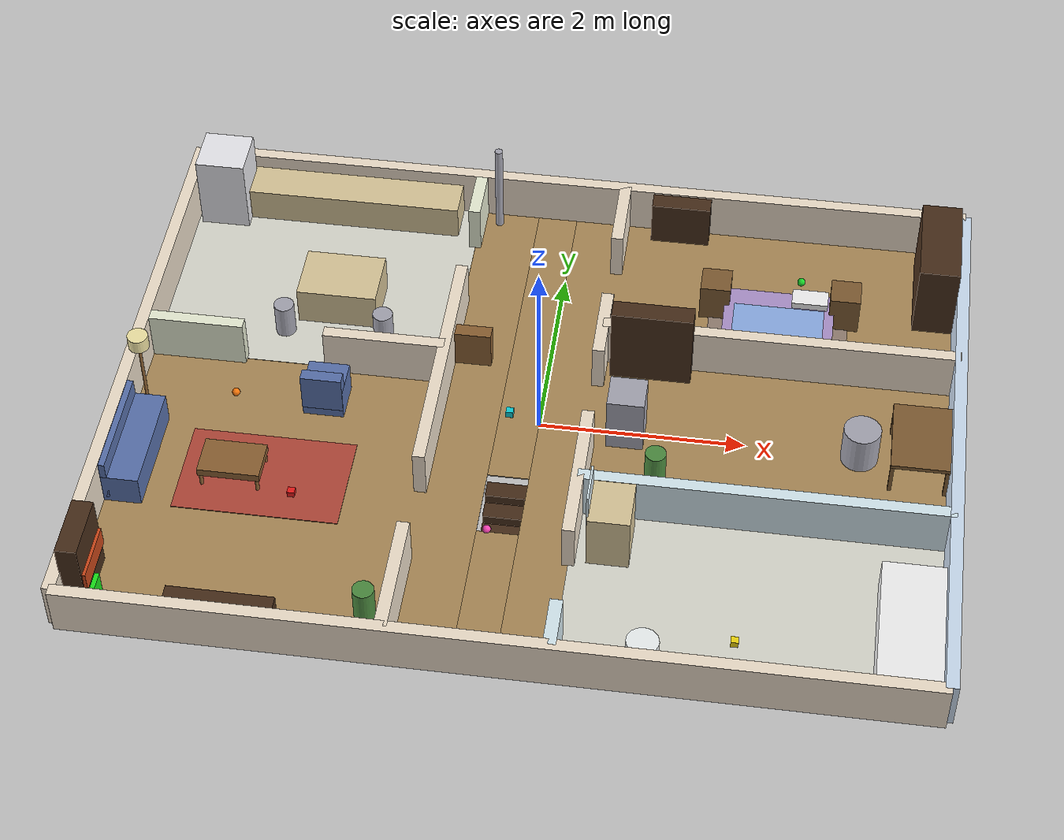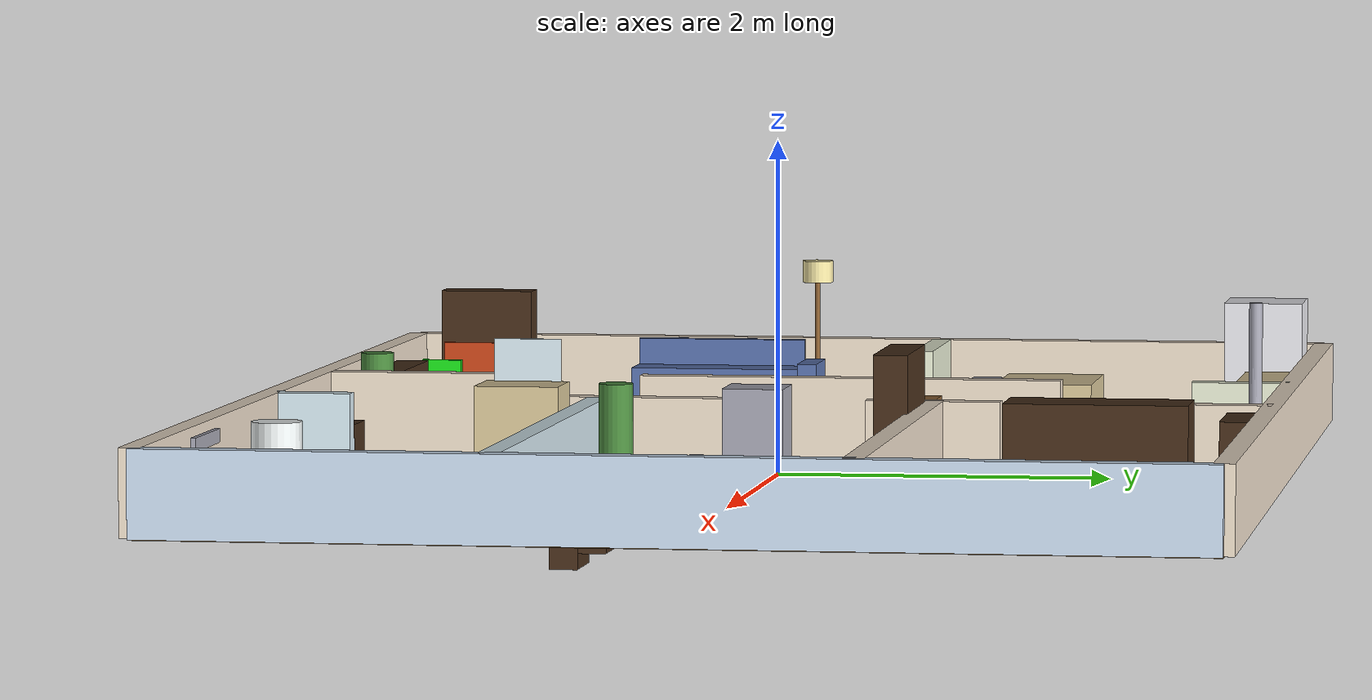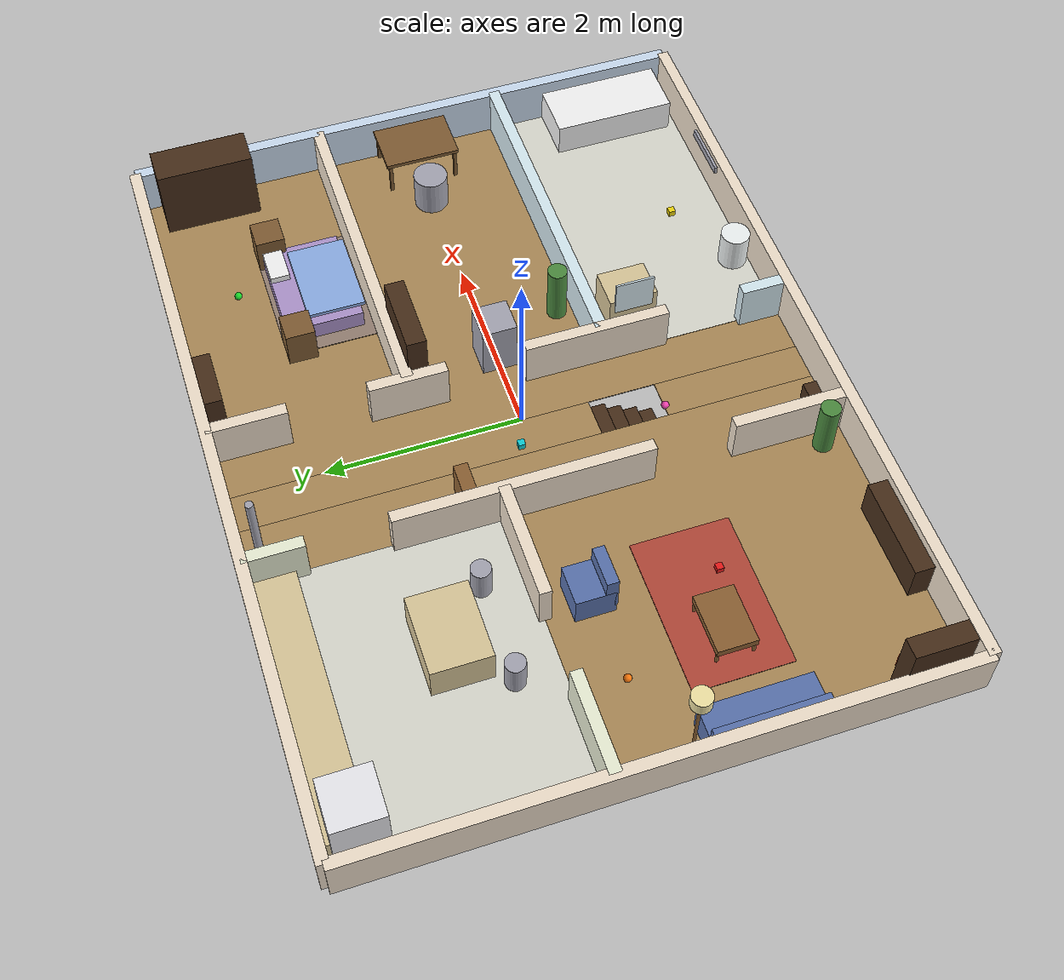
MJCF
<?xml version="1.0" encoding="utf-8"?>
<mujoco model="map_apartment">
  <visual>
    <headlight diffuse="0.6 0.6 0.6" ambient="0.3 0.3 0.3" specular="0 0 0" />
    <rgba haze="0.15 0.25 0.35 1" />
    <global azimuth="135" elevation="-25" />
    <quality shadowsize="4096" />
  </visual>

  <asset>
    <texture type="skybox" builtin="gradient" rgb1="0.3 0.5 0.7" rgb2="0 0 0" width="512" height="3072" />
    <texture type="2d" name="floor_wood" builtin="checker" rgb1="0.72 0.58 0.38" rgb2="0.62 0.50 0.30" width="256" height="256" />
    <texture type="2d" name="floor_tile" builtin="checker" rgb1="0.92 0.92 0.88" rgb2="0.78 0.78 0.74" width="256" height="256" />
    <material name="floor_main" texture="floor_wood" texrepeat="14 14" reflectance="0.04" />
    <material name="floor_kitchen" texture="floor_tile" texrepeat="20 20" reflectance="0.05" />
    <material name="floor_bath" texture="floor_tile" texrepeat="20 20" reflectance="0.10" />
    <material name="floor_carpet" rgba="0.58 0.50 0.45 1" reflectance="0.01" />

    <material name="wall_warm" rgba="0.94 0.88 0.80 1" reflectance="0.02" />
    <material name="wall_cool" rgba="0.80 0.87 0.95 1" reflectance="0.02" />
    <material name="wall_kitchen" rgba="0.92 0.94 0.84 1" reflectance="0.02" />
    <material name="wall_bath" rgba="0.84 0.92 0.95 1" reflectance="0.05" />

    <material name="sofa" rgba="0.35 0.45 0.68 1" />
    <material name="table_wood" rgba="0.55 0.38 0.20 1" />
    <material name="bed_mat" rgba="0.68 0.58 0.80 1" />
    <material name="bookshelf_mat" rgba="0.28 0.18 0.10 1" />
    <material name="desk_mat" rgba="0.50 0.36 0.20 1" />
    <material name="rug_mat" rgba="0.70 0.28 0.22 1" />
    <material name="lamp_mat" rgba="0.95 0.90 0.65 1" />
    <material name="dock_mat" rgba="0.10 0.90 0.10 1" />

    <material name="counter_mat" rgba="0.85 0.78 0.60 1" />
    <material name="fridge_mat" rgba="0.92 0.92 0.94 1" />
    <material name="tub_mat" rgba="0.96 0.96 0.96 1" />
    <material name="toilet_mat" rgba="0.94 0.96 0.96 1" />
    <material name="metal_mat" rgba="0.65 0.65 0.70 1" />

    <material name="obj_red" rgba="0.92 0.10 0.10 1" />
    <material name="obj_blue" rgba="0.10 0.20 0.95 1" />
    <material name="obj_yellow" rgba="0.95 0.85 0.05 1" />
    <material name="obj_cyan" rgba="0.05 0.82 0.85 1" />
    <material name="ball_orange" rgba="0.96 0.46 0.04 1" />
    <material name="ball_green" rgba="0.10 0.84 0.16 1" />
    <material name="ball_pink" rgba="0.96 0.26 0.70 1" />
  </asset>

  <worldbody>

    <light pos="0 0 3" dir="0 0 -1" directional="true" castshadow="true" />
    <geom name="floor_w" type="box" size="1.80 3.00 0.005" pos="-2.20 0.00 -0.005" material="floor_main" contype="1" conaffinity="1" />
    <geom name="floor_e" type="box" size="2.00 3.00 0.005" pos=" 2.00 0.00 -0.005" material="floor_main" contype="1" conaffinity="1" />
    <geom name="floor_corridor_s" type="box" size="0.20 0.80 0.005" pos="-0.20 -2.20 -0.005" material="floor_main" contype="1" conaffinity="1" />
    <geom name="floor_corridor_n" type="box" size="0.20 1.85 0.005" pos="-0.20  1.15 -0.005" material="floor_main" contype="1" conaffinity="1" />

    <geom name="stair_1" type="box" size="0.20 0.0875 0.10" pos="-0.20 -0.7875 -0.20" material="bookshelf_mat" contype="1" conaffinity="1" />
    <geom name="stair_2" type="box" size="0.20 0.0875 0.10" pos="-0.20 -0.9625 -0.30" material="bookshelf_mat" contype="1" conaffinity="1" />
    <geom name="stair_3" type="box" size="0.20 0.0875 0.10" pos="-0.20 -1.1375 -0.40" material="bookshelf_mat" contype="1" conaffinity="1" />
    <geom name="stair_4" type="box" size="0.20 0.0875 0.10" pos="-0.20 -1.3125 -0.50" material="bookshelf_mat" contype="1" conaffinity="1" />

    <geom name="floor_kitchen" type="box" size="1.50 1.25 0.002" pos="-2.50 1.75 0.002" material="floor_kitchen" contype="0" conaffinity="0" />
    <geom name="floor_bath" type="box" size="1.75 1.00 0.002" pos="2.25 -2.00 0.002" material="floor_bath" contype="0" conaffinity="0" />
    <geom name="rug_living" type="box" size="0.80 0.50 0.004" pos="-2.50 -1.00 0.004" material="rug_mat" contype="0" conaffinity="0" />
    <geom name="rug_bedroom" type="box" size="0.70 0.50 0.004" pos="2.20 1.50 0.004" material="floor_carpet" contype="0" conaffinity="0" />

    <geom name="wall_south" type="box" size="4.00 0.06 0.25" pos="0 -3.00 0.25" material="wall_warm" contype="1" conaffinity="1" />
    <geom name="wall_north" type="box" size="4.00 0.06 0.25" pos="0  3.00 0.25" material="wall_warm" contype="1" conaffinity="1" />
    <geom name="wall_west" type="box" size="0.06 3.00 0.25" pos="-4.00 0 0.25" material="wall_warm" contype="1" conaffinity="1" />
    <geom name="wall_east" type="box" size="0.06 3.00 0.25" pos=" 4.00 0 0.25" material="wall_cool" contype="1" conaffinity="1" />

    <geom name="wA_w" type="box" size="0.50 0.06 0.25" pos="-3.50  0.50 0.25" material="wall_kitchen" contype="1" conaffinity="1" />
    <geom name="wA_e" type="box" size="0.60 0.06 0.25" pos="-1.60  0.50 0.25" material="wall_warm" contype="1" conaffinity="1" />

    <geom name="wB_s" type="box" size="0.06 0.60 0.25" pos="-1.00 -2.40 0.25" material="wall_warm" contype="1" conaffinity="1" />
    <geom name="wB_m" type="box" size="0.06 1.30 0.25" pos="-1.00  0.30 0.25" material="wall_warm" contype="1" conaffinity="1" />
    <geom name="wB_n" type="box" size="0.06 0.30 0.25" pos="-1.00  2.70 0.25" material="wall_kitchen" contype="1" conaffinity="1" />

    <geom name="wC_s" type="box" size="0.06 0.25 0.25" pos="0.50 -2.75 0.25" material="wall_bath" contype="1" conaffinity="1" />
    <geom name="wC_m1" type="box" size="0.06 0.75 0.25" pos="0.50 -0.95 0.25" material="wall_warm" contype="1" conaffinity="1" />
    <geom name="wC_m2" type="box" size="0.06 0.40 0.25" pos="0.50  1.00 0.25" material="wall_warm" contype="1" conaffinity="1" />
    <geom name="wC_n" type="box" size="0.06 0.40 0.25" pos="0.50  2.60 0.25" material="wall_warm" contype="1" conaffinity="1" />

    <geom name="wF" type="box" size="1.75 0.06 0.25" pos="2.25 1.00 0.25" material="wall_warm" contype="1" conaffinity="1" />

    <geom name="wG" type="box" size="1.75 0.06 0.25" pos="2.25 -1.00 0.25" material="wall_bath" contype="1" conaffinity="1" />

    <geom name="kit_counter" type="box" size="1.30 0.20 0.18" pos="-2.50 2.74 0.18" material="counter_mat" contype="1" conaffinity="1" />

    <geom name="kit_fridge" type="box" size="0.25 0.25 0.40" pos="-3.65 2.65 0.40" material="fridge_mat" contype="1" conaffinity="1" />

    <geom name="kit_island" type="box" size="0.40 0.30 0.20" pos="-2.20 1.40 0.20" material="counter_mat" contype="1" conaffinity="1" />

    <geom name="kit_stool1" type="cylinder" size="0.10 0.18" pos="-2.70 0.95 0.18" material="metal_mat" contype="1" conaffinity="1" />
    <geom name="kit_stool2" type="cylinder" size="0.10 0.18" pos="-1.70 0.95 0.18" material="metal_mat" contype="1" conaffinity="1" />

    <geom name="liv_sofa_seat" type="box" size="0.20 0.55 0.16" pos="-3.78 -0.95 0.16" material="sofa" contype="1" conaffinity="1" />
    <geom name="liv_sofa_back" type="box" size="0.06 0.55 0.22" pos="-3.94 -0.95 0.27" material="sofa" contype="1" conaffinity="1" />

    <geom name="liv_table" type="box" size="0.30 0.20 0.04" pos="-2.80 -1.00 0.18" material="table_wood" contype="1" conaffinity="1" />
    <geom name="liv_table_l1" type="cylinder" size="0.018 0.08" pos="-3.07 -1.18 0.08" material="table_wood" contype="1" conaffinity="1" />
    <geom name="liv_table_l2" type="cylinder" size="0.018 0.08" pos="-2.53 -1.18 0.08" material="table_wood" contype="1" conaffinity="1" />
    <geom name="liv_table_l3" type="cylinder" size="0.018 0.08" pos="-3.07 -0.82 0.08" material="table_wood" contype="1" conaffinity="1" />
    <geom name="liv_table_l4" type="cylinder" size="0.018 0.08" pos="-2.53 -0.82 0.08" material="table_wood" contype="1" conaffinity="1" />

    <geom name="liv_tv_stand" type="box" size="0.50 0.10 0.20" pos="-2.50 -2.84 0.20" material="bookshelf_mat" contype="1" conaffinity="1" />

    <geom name="liv_shelf" type="box" size="0.10 0.30 0.40" pos="-3.85 -2.50 0.40" material="bookshelf_mat" contype="1" conaffinity="1" />
    <geom name="liv_books" type="box" size="0.06 0.28 0.10" pos="-3.78 -2.50 0.36" rgba="0.80 0.28 0.10 1" contype="0" conaffinity="0" />

    <geom name="liv_lamp_pole" type="cylinder" size="0.015 0.45" pos="-3.80 -0.30 0.45" material="table_wood" contype="1" conaffinity="1" />
    <geom name="liv_lamp_shade" type="cylinder" size="0.10 0.07" pos="-3.80 -0.30 0.95" material="lamp_mat" contype="0" conaffinity="0" />

    <geom name="liv_chair_seat" type="box" size="0.20 0.20 0.16" pos="-2.10 0.05 0.16" material="sofa" contype="1" conaffinity="1" />
    <geom name="liv_chair_back" type="box" size="0.20 0.06 0.20" pos="-2.10 -0.10 0.30" material="sofa" contype="1" conaffinity="1" />

    <geom name="liv_plant" type="cylinder" size="0.10 0.30" pos="-1.20 -2.70 0.30" rgba="0.30 0.55 0.25 1" contype="1" conaffinity="1" />

    <geom name="cor_console" type="box" size="0.20 0.07 0.20" pos="-0.78 0.80 0.20" material="table_wood" contype="1" conaffinity="1" />

    <geom name="cor_coat_rack" type="cylinder" size="0.04 0.50" pos="-0.80 2.80 0.50" material="metal_mat" contype="1" conaffinity="1" />

    <geom name="cor_shoes" type="box" size="0.20 0.07 0.10" pos="-0.80 -2.80 0.10" material="bookshelf_mat" contype="1" conaffinity="1" />

    <geom name="bed_base" type="box" size="0.55 0.40 0.10" pos="2.20 1.55 0.10" material="bed_mat" contype="1" conaffinity="1" />
    <geom name="bed_pillow" type="box" size="0.18 0.10 0.04" pos="2.50 1.85 0.23" rgba="0.96 0.96 0.96 1" contype="0" conaffinity="0" />
    <geom name="bed_blanket" type="box" size="0.45 0.30 0.02" pos="2.20 1.40 0.22" rgba="0.55 0.68 0.90 1" contype="0" conaffinity="0" />

    <geom name="bed_ns_l" type="box" size="0.15 0.15 0.20" pos="1.55 1.85 0.20" material="desk_mat" contype="1" conaffinity="1" />
    <geom name="bed_ns_r" type="box" size="0.15 0.15 0.20" pos="2.85 1.85 0.20" material="desk_mat" contype="1" conaffinity="1" />

    <geom name="bed_wardrobe" type="box" size="0.20 0.50 0.40" pos="3.74 2.30 0.40" material="bookshelf_mat" contype="1" conaffinity="1" />

    <geom name="bed_dresser" type="box" size="0.30 0.10 0.24" pos="1.10 2.86 0.24" material="bookshelf_mat" contype="1" conaffinity="1" />

    <geom name="off_desk" type="box" size="0.28 0.40 0.02" pos="3.66 0.00 0.36" material="desk_mat" contype="1" conaffinity="1" />
    <geom name="off_desk_l1" type="box" size="0.018 0.018 0.17" pos="3.40 -0.36 0.17" material="desk_mat" contype="1" conaffinity="1" />
    <geom name="off_desk_l2" type="box" size="0.018 0.018 0.17" pos="3.92 -0.36 0.17" material="desk_mat" contype="1" conaffinity="1" />
    <geom name="off_desk_l3" type="box" size="0.018 0.018 0.17" pos="3.40  0.36 0.17" material="desk_mat" contype="1" conaffinity="1" />
    <geom name="off_desk_l4" type="box" size="0.018 0.018 0.17" pos="3.92  0.36 0.17" material="desk_mat" contype="1" conaffinity="1" />

    <geom name="off_chair" type="cylinder" size="0.18 0.20" pos="3.10 0.00 0.20" material="metal_mat" contype="1" conaffinity="1" />

    <geom name="off_shelf" type="box" size="0.40 0.10 0.42" pos="1.00 0.86 0.42" material="bookshelf_mat" contype="1" conaffinity="1" />

    <geom name="off_cabinet" type="box" size="0.18 0.18 0.30" pos="0.85 0.00 0.30" material="metal_mat" contype="1" conaffinity="1" />

    <geom name="off_plant" type="cylinder" size="0.10 0.32" pos="1.20 -0.78 0.32" rgba="0.30 0.55 0.25 1" contype="1" conaffinity="1" />

    <geom name="bth_tub" type="box" size="0.30 0.65 0.18" pos="3.65 -2.20 0.18" material="tub_mat" contype="1" conaffinity="1" />

    <geom name="bth_vanity" type="box" size="0.20 0.25 0.30" pos="0.86 -1.40 0.30" material="counter_mat" contype="1" conaffinity="1" />
    <geom name="bth_mirror" type="box" size="0.01 0.20 0.20" pos="0.66 -1.40 0.65" rgba="0.85 0.92 0.95 1" contype="0" conaffinity="0" />

    <geom name="bth_toilet" type="cylinder" size="0.15 0.20" pos="1.30 -2.78 0.20" material="toilet_mat" contype="1" conaffinity="1" />

    <geom name="bth_rail" type="box" size="0.30 0.02 0.04" pos="2.50 -2.93 0.40" material="metal_mat" contype="0" conaffinity="0" />

    <body name="dock" pos="-3.80 -2.78 0">
      <geom name="dock_base" type="box" size="0.16 0.16 0.012" pos="0 0 0.012" material="dock_mat" contype="0" conaffinity="0" />
      <geom name="dock_panel" type="box" size="0.022 0.13 0.17" pos="0.14 0 0.18" material="dock_mat" contype="0" conaffinity="0" />
      <geom name="dock_s1" type="box" size="0.005 0.11 0.012" pos="0.125 0 0.09" rgba="1 1 1 1" contype="0" conaffinity="0" />
      <geom name="dock_s2" type="box" size="0.005 0.11 0.012" pos="0.125 0 0.19" rgba="1 1 1 1" contype="0" conaffinity="0" />
      <site name="dock_site" pos="0 0 0.02" size="0.01" />
    </body>

    <body name="obj_0" pos="-2.20 -1.20 0">
      <freejoint />
      <geom name="obj_0_geom" type="box" size="0.035 0.035 0.035" pos="0 0 0.035" material="obj_red" contype="1" conaffinity="1" mass="0.05" />
    </body>
    <body name="obj_1" pos="-2.50 1.40 0">
      <freejoint />
      <geom name="obj_1_geom" type="box" size="0.035 0.035 0.035" pos="0 0 0.035" material="obj_blue" contype="1" conaffinity="1" mass="0.05" />
    </body>
    <body name="obj_2" pos="2.10 -2.40 0">
      <freejoint />
      <geom name="obj_2_geom" type="box" size="0.035 0.035 0.035" pos="0 0 0.035" material="obj_yellow" contype="1" conaffinity="1" mass="0.05" />
    </body>
    <body name="obj_3" pos="-0.30 0.10 0">
      <freejoint />
      <geom name="obj_3_geom" type="box" size="0.035 0.035 0.035" pos="0 0 0.035" material="obj_cyan" contype="1" conaffinity="1" mass="0.05" />
    </body>

    <body name="ball_0" pos="-3.00 0.00 0">
      <freejoint />
      <geom name="ball_0_geom" type="sphere" size="0.040" pos="0 0 0.040" material="ball_orange" contype="1" conaffinity="1" mass="0.025" />
    </body>
    <body name="ball_1" pos="2.40 2.30 0">
      <freejoint />
      <geom name="ball_1_geom" type="sphere" size="0.040" pos="0 0 0.040" material="ball_green" contype="1" conaffinity="1" mass="0.025" />
    </body>
    <body name="ball_2" pos="-0.30 -1.40 0">
      <freejoint />
      <geom name="ball_2_geom" type="sphere" size="0.040" pos="0 0 0.040" material="ball_pink" contype="1" conaffinity="1" mass="0.025" />
    </body>

  </worldbody>
</mujoco>
